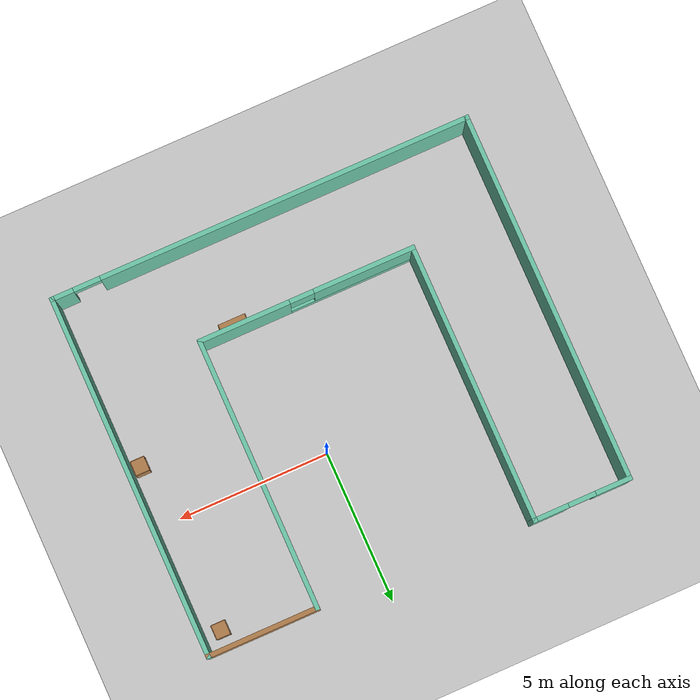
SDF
<sdf version="1.6">
 <world name="default">
  <model name="ground_plane">
   <static>1</static>
   <link name="link">
    <collision name="collision">
     <geometry><plane><normal>0 0 1</normal><size>100 100</size></plane></geometry>
     <surface>
      <contact><collide_bitmask>65535</collide_bitmask></contact>
      <friction><ode><mu>100</mu><mu2>50</mu2></ode></friction>
     </surface>
    </collision>
    <visual name="visual">
     <cast_shadows>0</cast_shadows>
     <geometry><plane><normal>0 0 1</normal><size>100 100</size></plane></geometry>
     <material>
      <script><uri>file://media/materials/scripts/gazebo.material</uri><name>Gazebo/Grey</name></script>
     </material>
    </visual>
   </link>
  </model>
  <model name="mybuilding">
   <pose>-1.10318 -1.51522 0 0 -0 0</pose>
   <link name="Wall_1">
    <collision name="Wall_1_Collision">
     <geometry><box><size>12.25 0.15 2.5</size></box></geometry>
     <pose>0 0 1.25 0 -0 0</pose>
    </collision>
    <visual name="Wall_1_Visual">
     <pose>0 0 1.25 0 -0 0</pose>
     <geometry><box><size>12.25 0.15 2.5</size></box></geometry>
     <material>
      <script><uri>file://media/materials/scripts/gazebo.material</uri><name>Gazebo/Grey</name></script>
      <ambient>0.435294 0.796078 0.67451 1</ambient>
     </material>
     <meta><layer>0</layer></meta>
    </visual>
    <pose>-6.925 0 0 0 0 -1.5708</pose>
   </link>
   <link name="Wall_2">
    <pose>-1e-06 -6.05 0 0 -0 0</pose>
    <visual name="Wall_2_Visual_0">
     <pose>-0.838181 0 1.25 0 -0 0</pose>
     <geometry><box><size>12.3236 0.15 2.5</size></box></geometry>
     <material>
      <script><uri>file://media/materials/scripts/gazebo.material</uri><name>Gazebo/Grey</name></script>
      <ambient>0.435294 0.796078 0.67451 1</ambient>
     </material>
     <meta><layer>0</layer></meta>
    </visual>
    <collision name="Wall_2_Collision_0">
     <geometry><box><size>12.3236 0.15 2.5</size></box></geometry>
     <pose>-0.838181 0 1.25 0 -0 0</pose>
    </collision>
    <visual name="Wall_2_Visual_1">
     <pose>6.61182 0 1.25 0 -0 0</pose>
     <geometry><box><size>0.776362 0.15 2.5</size></box></geometry>
     <material>
      <script><uri>file://media/materials/scripts/gazebo.material</uri><name>Gazebo/Grey</name></script>
      <ambient>0.435294 0.796078 0.67451 1</ambient>
     </material>
     <meta><layer>0</layer></meta>
    </visual>
    <collision name="Wall_2_Collision_1">
     <geometry><box><size>0.776362 0.15 2.5</size></box></geometry>
     <pose>6.61182 0 1.25 0 -0 0</pose>
    </collision>
    <visual name="Wall_2_Visual_2">
     <pose>5.77364 0 2.25 0 -0 0</pose>
     <geometry><box><size>0.9 0.15 0.5</size></box></geometry>
     <material>
      <script><uri>file://media/materials/scripts/gazebo.material</uri><name>Gazebo/Grey</name></script>
      <ambient>0.435294 0.796078 0.67451 1</ambient>
     </material>
     <meta><layer>0</layer></meta>
    </visual>
    <collision name="Wall_2_Collision_2">
     <geometry><box><size>0.9 0.15 0.5</size></box></geometry>
     <pose>5.77364 0 2.25 0 -0 0</pose>
    </collision>
   </link>
   <link name="Wall_3">
    <collision name="Wall_3_Collision">
     <geometry><box><size>12 0.15 2.5</size></box></geometry>
     <pose>0 0 1.25 0 -0 0</pose>
    </collision>
    <visual name="Wall_3_Visual">
     <pose>0 0 1.25 0 -0 0</pose>
     <geometry><box><size>12 0.15 2.5</size></box></geometry>
     <material>
      <script><uri>file://media/materials/scripts/gazebo.material</uri><name>Gazebo/Grey</name></script>
      <ambient>0.435294 0.796078 0.67451 1</ambient>
     </material>
     <meta><layer>0</layer></meta>
    </visual>
    <pose>6.925 -0.125 0 0 -0 1.5708</pose>
   </link>
   <link name="Wall_4">
    <collision name="Wall_4_Collision">
     <geometry><box><size>3.75 0.15 2.5</size></box></geometry>
     <pose>0 0 1.25 0 -0 0</pose>
    </collision>
    <visual name="Wall_4_Visual">
     <pose>0 0 1.25 0 -0 0</pose>
     <geometry><box><size>3.75 0.15 2.5</size></box></geometry>
     <material>
      <script><uri>file://media/materials/scripts/gazebo.material</uri><name>Gazebo/Wood</name></script>
      <ambient>0.435294 0.796078 0.67451 1</ambient>
     </material>
     <meta><layer>0</layer></meta>
    </visual>
    <pose>5.125 5.8 0 0 -0 3.14159</pose>
   </link>
   <link name="Wall_5">
    <collision name="Wall_5_Collision">
     <geometry><box><size>9 0.15 2.5</size></box></geometry>
     <pose>0 0 1.25 0 -0 0</pose>
    </collision>
    <visual name="Wall_5_Visual">
     <pose>0 0 1.25 0 -0 0</pose>
     <geometry><box><size>9 0.15 2.5</size></box></geometry>
     <material>
      <script><uri>file://media/materials/scripts/gazebo.material</uri><name>Gazebo/Grey</name></script>
      <ambient>0.435294 0.796078 0.67451 1</ambient>
     </material>
     <meta><layer>0</layer></meta>
    </visual>
    <pose>3.325 1.375 0 0 0 -1.5708</pose>
   </link>
   <link name="Wall_6">
    <pose>-0.225 -3.05 0 0 -0 3.14159</pose>
    <visual name="Wall_6_Visual_0">
     <pose>-2.09198 0 1.25 0 -0 0</pose>
     <geometry><box><size>3.06604 0.15 2.5</size></box></geometry>
     <material>
      <script><uri>file://media/materials/scripts/gazebo.material</uri><name>Gazebo/Grey</name></script>
      <ambient>0.435294 0.796078 0.67451 1</ambient>
     </material>
     <meta><layer>0</layer></meta>
    </visual>
    <collision name="Wall_6_Collision_0">
     <geometry><box><size>3.06604 0.15 2.5</size></box></geometry>
     <pose>-2.09198 0 1.25 0 -0 0</pose>
    </collision>
    <visual name="Wall_6_Visual_1">
     <pose>1.53302 0 0.25 0 -0 0</pose>
     <geometry><box><size>4.18396 0.15 0.5</size></box></geometry>
     <material>
      <script><uri>file://media/materials/scripts/gazebo.material</uri><name>Gazebo/Grey</name></script>
      <ambient>0.435294 0.796078 0.67451 1</ambient>
     </material>
     <meta><layer>0</layer></meta>
    </visual>
    <collision name="Wall_6_Collision_1">
     <geometry><box><size>4.18396 0.15 0.5</size></box></geometry>
     <pose>1.53302 0 0.25 0 -0 0</pose>
    </collision>
    <visual name="Wall_6_Visual_2">
     <pose>1.93302 0 1.5 0 -0 0</pose>
     <geometry><box><size>3.38396 0.15 2</size></box></geometry>
     <material>
      <script><uri>file://media/materials/scripts/gazebo.material</uri><name>Gazebo/Grey</name></script>
      <ambient>0.435294 0.796078 0.67451 1</ambient>
     </material>
     <meta><layer>0</layer></meta>
    </visual>
    <collision name="Wall_6_Collision_2">
     <geometry><box><size>3.38396 0.15 2</size></box></geometry>
     <pose>1.93302 0 1.5 0 -0 0</pose>
    </collision>
    <visual name="Wall_6_Visual_3">
     <pose>-0.158962 0 1.9 0 -0 0</pose>
     <geometry><box><size>0.8 0.15 1.2</size></box></geometry>
     <material>
      <script><uri>file://media/materials/scripts/gazebo.material</uri><name>Gazebo/Grey</name></script>
      <ambient>0.435294 0.796078 0.67451 1</ambient>
     </material>
     <meta><layer>0</layer></meta>
    </visual>
    <collision name="Wall_6_Collision_3">
     <geometry><box><size>0.8 0.15 1.2</size></box></geometry>
     <pose>-0.158962 0 1.9 0 -0 0</pose>
    </collision>
   </link>
   <link name="Wall_7">
    <collision name="Wall_7_Collision">
     <geometry><box><size>9.25 0.15 2.5</size></box></geometry>
     <pose>0 0 1.25 0 -0 0</pose>
    </collision>
    <visual name="Wall_7_Visual">
     <pose>0 0 1.25 0 -0 0</pose>
     <geometry><box><size>9.25 0.15 2.5</size></box></geometry>
     <material>
      <script><uri>file://media/materials/scripts/gazebo.material</uri><name>Gazebo/Grey</name></script>
      <ambient>0.435294 0.796078 0.67451 1</ambient>
     </material>
     <meta><layer>0</layer></meta>
    </visual>
    <pose>-3.775 1.5 0 0 -0 1.5708</pose>
   </link>
   <link name="Wall_8">
    <pose>-5.35 6.05 0 0 0 -3.14159</pose>
    <visual name="Wall_8_Visual_0">
     <pose>-1.05357 0 1.25 0 -0 0</pose>
     <geometry><box><size>1.19285 0.15 2.5</size></box></geometry>
     <material>
      <script><uri>file://media/materials/scripts/gazebo.material</uri><name>Gazebo/Grey</name></script>
      <ambient>0.435294 0.796078 0.67451 1</ambient>
     </material>
     <meta><layer>0</layer></meta>
    </visual>
    <collision name="Wall_8_Collision_0">
     <geometry><box><size>1.19285 0.15 2.5</size></box></geometry>
     <pose>-1.05357 0 1.25 0 -0 0</pose>
    </collision>
    <visual name="Wall_8_Visual_1">
     <pose>1.04643 0 1.25 0 -0 0</pose>
     <geometry><box><size>1.20715 0.15 2.5</size></box></geometry>
     <material>
      <script><uri>file://media/materials/scripts/gazebo.material</uri><name>Gazebo/Grey</name></script>
      <ambient>0.435294 0.796078 0.67451 1</ambient>
     </material>
     <meta><layer>0</layer></meta>
    </visual>
    <collision name="Wall_8_Collision_1">
     <geometry><box><size>1.20715 0.15 2.5</size></box></geometry>
     <pose>1.04643 0 1.25 0 -0 0</pose>
    </collision>
    <visual name="Wall_8_Visual_2">
     <pose>-0.007148 0 2.25 0 -0 0</pose>
     <geometry><box><size>0.9 0.15 0.5</size></box></geometry>
     <material>
      <script><uri>file://media/materials/scripts/gazebo.material</uri><name>Gazebo/Grey</name></script>
      <ambient>0.435294 0.796078 0.67451 1</ambient>
     </material>
     <meta><layer>0</layer></meta>
    </visual>
    <collision name="Wall_8_Collision_2">
     <geometry><box><size>0.9 0.15 0.5</size></box></geometry>
     <pose>-0.007148 0 2.25 0 -0 0</pose>
    </collision>
   </link>
   <static>1</static>
  </model>
  <model name="cabinet">
   <static>1</static>
   <link name="cabinet_bottom_plate">
    <inertial>
     <pose>0 0 -1 0 -0 0</pose>
     <inertia><ixx>2.05</ixx><ixy>0</ixy><ixz>0</ixz><iyy>2.05</iyy><iyz>0</iyz><izz>2.05</izz></inertia>
     <mass>25</mass>
    </inertial>
    <collision name="cabinet_bottom_plate_geom">
     <pose>0 0 0.01 0 -0 0</pose>
     <geometry><box><size>0.45 0.45 0.02</size></box></geometry>
    </collision>
    <visual name="cabinet_bottom_plate_geom_visual">
     <pose>0 0 0.01 0 -0 0</pose>
     <geometry><box><size>0.45 0.45 0.02</size></box></geometry>
     <material>
      <script><uri>file://media/materials/scripts/gazebo.material</uri><name>Gazebo/Wood</name></script>
     </material>
    </visual>
    <collision name="cabinet_bottom_plate_geom_cabinet_back_plate">
     <pose>0.235 0 0.51 0 -0 0</pose>
     <geometry><box><size>0.02 0.45 1.02</size></box></geometry>
    </collision>
    <visual name="cabinet_bottom_plate_geom_cabinet_back_plate_visual">
     <pose>0.235 0 0.51 0 -0 0</pose>
     <geometry><box><size>0.02 0.45 1.02</size></box></geometry>
     <material>
      <script><uri>file://media/materials/scripts/gazebo.material</uri><name>Gazebo/Wood</name></script>
     </material>
    </visual>
    <collision name="cabinet_bottom_plate_geom_cabinet_left_plate">
     <pose>0 0.235 0.51 0 -0 0</pose>
     <geometry><box><size>0.45 0.02 1.02</size></box></geometry>
    </collision>
    <visual name="cabinet_bottom_plate_geom_cabinet_left_plate_visual">
     <pose>0 0.235 0.51 0 -0 0</pose>
     <geometry><box><size>0.45 0.02 1.02</size></box></geometry>
     <material>
      <script><uri>file://media/materials/scripts/gazebo.material</uri><name>Gazebo/Wood</name></script>
     </material>
    </visual>
    <collision name="cabinet_bottom_plate_geom_cabinet_middle_plate">
     <pose>0 0 0.51 0 -0 0</pose>
     <geometry><box><size>0.45 0.45 0.02</size></box></geometry>
    </collision>
    <visual name="cabinet_bottom_plate_geom_cabinet_middle_plate_visual">
     <pose>0 0 0.51 0 -0 0</pose>
     <geometry><box><size>0.45 0.45 0.02</size></box></geometry>
     <material>
      <script><uri>file://media/materials/scripts/gazebo.material</uri><name>Gazebo/Wood</name></script>
     </material>
    </visual>
    <collision name="cabinet_bottom_plate_geom_cabinet_right_plate">
     <pose>0 -0.235 0.51 0 -0 0</pose>
     <geometry><box><size>0.45 0.02 1.02</size></box></geometry>
    </collision>
    <visual name="cabinet_bottom_plate_geom_cabinet_right_plate_visual">
     <pose>0 -0.235 0.51 0 -0 0</pose>
     <geometry><box><size>0.45 0.02 1.02</size></box></geometry>
     <material>
      <script><uri>file://media/materials/scripts/gazebo.material</uri><name>Gazebo/Wood</name></script>
     </material>
    </visual>
    <collision name="cabinet_bottom_plate_geom_cabinet_top_plate">
     <pose>0 0 1.01 0 -0 0</pose>
     <geometry><box><size>0.45 0.45 0.02</size></box></geometry>
    </collision>
    <visual name="cabinet_bottom_plate_geom_cabinet_top_plate_visual">
     <pose>0 0 1.01 0 -0 0</pose>
     <geometry><box><size>0.45 0.45 0.02</size></box></geometry>
     <material>
      <script><uri>file://media/materials/scripts/gazebo.material</uri><name>Gazebo/Wood</name></script>
     </material>
    </visual>
   </link>
   <pose>5.2015 3.67639 0 0 -0 0</pose>
  </model>
  <model name="bookshelf">
   <static>1</static>
   <link name="link">
    <inertial><mass>1</mass></inertial>
    <collision name="back">
     <pose>0 0.005 0.6 0 -0 0</pose>
     <geometry><box><size>0.9 0.01 1.2</size></box></geometry>
    </collision>
    <visual name="visual1">
     <pose>0 0.005 0.6 0 -0 0</pose>
     <geometry><box><size>0.9 0.01 1.2</size></box></geometry>
     <material>
      <script><uri>file://media/materials/scripts/gazebo.material</uri><name>Gazebo/Wood</name></script>
     </material>
    </visual>
    <collision name="left_side">
     <pose>0.45 -0.195 0.6 0 -0 0</pose>
     <geometry><box><size>0.02 0.4 1.2</size></box></geometry>
    </collision>
    <visual name="visual2">
     <pose>0.45 -0.195 0.6 0 -0 0</pose>
     <geometry><box><size>0.02 0.4 1.2</size></box></geometry>
     <material>
      <script><uri>file://media/materials/scripts/gazebo.material</uri><name>Gazebo/Wood</name></script>
     </material>
    </visual>
    <collision name="right_side">
     <pose>-0.45 -0.195 0.6 0 -0 0</pose>
     <geometry><box><size>0.02 0.4 1.2</size></box></geometry>
    </collision>
    <visual name="visual3">
     <pose>-0.45 -0.195 0.6 0 -0 0</pose>
     <geometry><box><size>0.02 0.4 1.2</size></box></geometry>
     <material>
      <script><uri>file://media/materials/scripts/gazebo.material</uri><name>Gazebo/Wood</name></script>
     </material>
    </visual>
    <collision name="bottom">
     <pose>0 -0.195 0.03 0 -0 0</pose>
     <geometry><box><size>0.88 0.4 0.06</size></box></geometry>
    </collision>
    <visual name="visual4">
     <pose>0 -0.195 0.03 0 -0 0</pose>
     <geometry><box><size>0.88 0.4 0.06</size></box></geometry>
     <material>
      <script><uri>file://media/materials/scripts/gazebo.material</uri><name>Gazebo/Wood</name></script>
     </material>
    </visual>
    <collision name="top">
     <pose>0 -0.195 1.19 0 -0 0</pose>
     <geometry><box><size>0.88 0.4 0.02</size></box></geometry>
    </collision>
    <visual name="visual5">
     <pose>0 -0.195 1.19 0 -0 0</pose>
     <geometry><box><size>0.88 0.4 0.02</size></box></geometry>
     <material>
      <script><uri>file://media/materials/scripts/gazebo.material</uri><name>Gazebo/Wood</name></script>
     </material>
    </visual>
    <collision name="low_shelf">
     <pose>0 -0.195 0.43 0 -0 0</pose>
     <geometry><box><size>0.88 0.4 0.02</size></box></geometry>
    </collision>
    <visual name="visual6">
     <pose>0 -0.195 0.43 0 -0 0</pose>
     <geometry><box><size>0.88 0.4 0.02</size></box></geometry>
     <material>
      <script><uri>file://media/materials/scripts/gazebo.material</uri><name>Gazebo/Wood</name></script>
     </material>
    </visual>
    <collision name="high_shelf">
     <pose>0 -0.195 0.8 0 -0 0</pose>
     <geometry><box><size>0.88 0.4 0.02</size></box></geometry>
    </collision>
    <visual name="visual7">
     <pose>0 -0.195 0.8 0 -0 0</pose>
     <geometry><box><size>0.88 0.4 0.02</size></box></geometry>
     <material>
      <script><uri>file://media/materials/scripts/gazebo.material</uri><name>Gazebo/Wood</name></script>
     </material>
    </visual>
   </link>
   <pose>1.05558 -4.55114 0 0 -0 0</pose>
  </model>
  <model name="cabinet_0">
   <static>1</static>
   <link name="cabinet_bottom_plate">
    <inertial>
     <pose>0 0 -1 0 -0 0</pose>
     <inertia><ixx>2.05</ixx><ixy>0</ixy><ixz>0</ixz><iyy>2.05</iyy><iyz>0</iyz><izz>2.05</izz></inertia>
     <mass>25</mass>
    </inertial>
    <collision name="cabinet_bottom_plate_geom">
     <pose>0 0 0.01 0 -0 0</pose>
     <geometry><box><size>0.45 0.45 0.02</size></box></geometry>
    </collision>
    <visual name="cabinet_bottom_plate_geom_visual">
     <pose>0 0 0.01 0 -0 0</pose>
     <geometry><box><size>0.45 0.45 0.02</size></box></geometry>
     <material>
      <script><uri>file://media/materials/scripts/gazebo.material</uri><name>Gazebo/Wood</name></script>
     </material>
    </visual>
    <collision name="cabinet_bottom_plate_geom_cabinet_back_plate">
     <pose>0.235 0 0.51 0 -0 0</pose>
     <geometry><box><size>0.02 0.45 1.02</size></box></geometry>
    </collision>
    <visual name="cabinet_bottom_plate_geom_cabinet_back_plate_visual">
     <pose>0.235 0 0.51 0 -0 0</pose>
     <geometry><box><size>0.02 0.45 1.02</size></box></geometry>
     <material>
      <script><uri>file://media/materials/scripts/gazebo.material</uri><name>Gazebo/Wood</name></script>
     </material>
    </visual>
    <collision name="cabinet_bottom_plate_geom_cabinet_left_plate">
     <pose>0 0.235 0.51 0 -0 0</pose>
     <geometry><box><size>0.45 0.02 1.02</size></box></geometry>
    </collision>
    <visual name="cabinet_bottom_plate_geom_cabinet_left_plate_visual">
     <pose>0 0.235 0.51 0 -0 0</pose>
     <geometry><box><size>0.45 0.02 1.02</size></box></geometry>
     <material>
      <script><uri>file://media/materials/scripts/gazebo.material</uri><name>Gazebo/Wood</name></script>
     </material>
    </visual>
    <collision name="cabinet_bottom_plate_geom_cabinet_middle_plate">
     <pose>0 0 0.51 0 -0 0</pose>
     <geometry><box><size>0.45 0.45 0.02</size></box></geometry>
    </collision>
    <visual name="cabinet_bottom_plate_geom_cabinet_middle_plate_visual">
     <pose>0 0 0.51 0 -0 0</pose>
     <geometry><box><size>0.45 0.45 0.02</size></box></geometry>
     <material>
      <script><uri>file://media/materials/scripts/gazebo.material</uri><name>Gazebo/Wood</name></script>
     </material>
    </visual>
    <collision name="cabinet_bottom_plate_geom_cabinet_right_plate">
     <pose>0 -0.235 0.51 0 -0 0</pose>
     <geometry><box><size>0.45 0.02 1.02</size></box></geometry>
    </collision>
    <visual name="cabinet_bottom_plate_geom_cabinet_right_plate_visual">
     <pose>0 -0.235 0.51 0 -0 0</pose>
     <geometry><box><size>0.45 0.02 1.02</size></box></geometry>
     <material>
      <script><uri>file://media/materials/scripts/gazebo.material</uri><name>Gazebo/Wood</name></script>
     </material>
    </visual>
    <collision name="cabinet_bottom_plate_geom_cabinet_top_plate">
     <pose>0 0 1.01 0 -0 0</pose>
     <geometry><box><size>0.45 0.45 0.02</size></box></geometry>
    </collision>
    <visual name="cabinet_bottom_plate_geom_cabinet_top_plate_visual">
     <pose>0 0 1.01 0 -0 0</pose>
     <geometry><box><size>0.45 0.45 0.02</size></box></geometry>
     <material>
      <script><uri>file://media/materials/scripts/gazebo.material</uri><name>Gazebo/Wood</name></script>
     </material>
    </visual>
   </link>
   <pose>5.45549 -1.93913 0 0 -0 0</pose>
  </model>
 </world>
</sdf>
